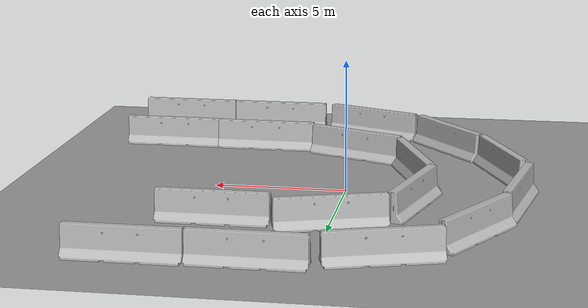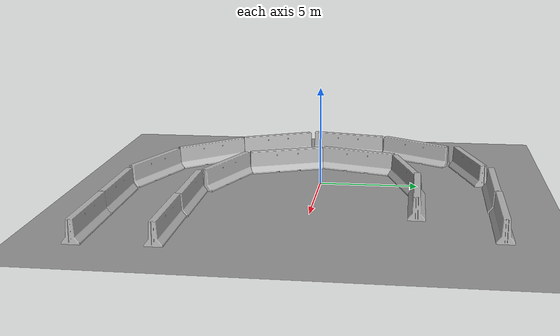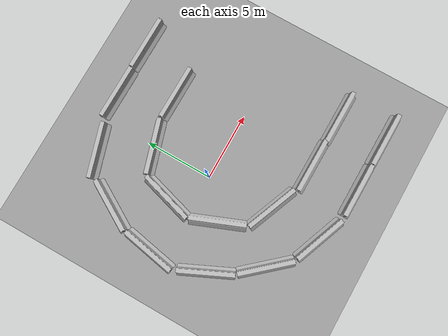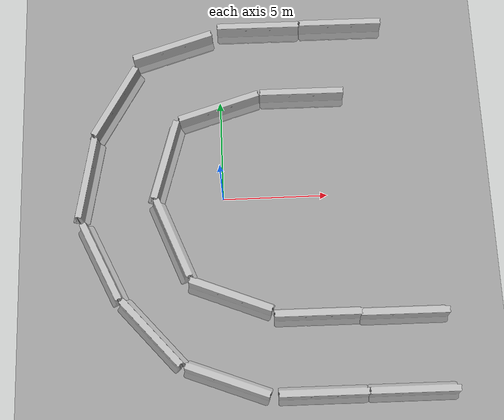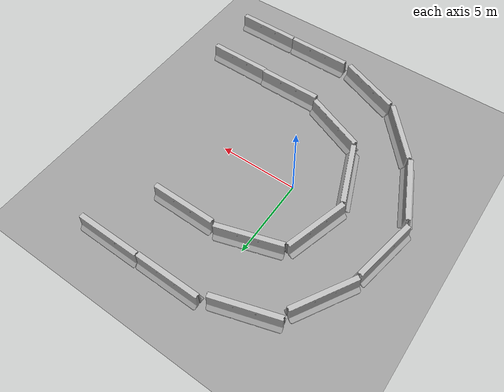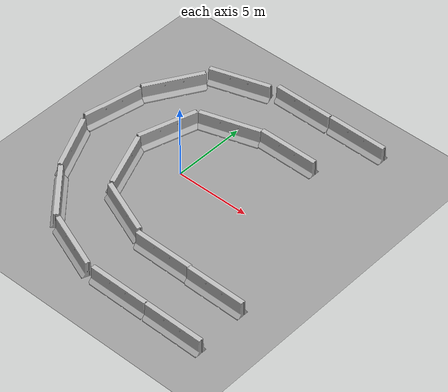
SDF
<sdf version="1.6">
 <world name="default">
  <light name="sun" type="directional">
   <pose>0 0 10 0 -0 0</pose>
   <diffuse>0.8 0.8 0.8 1</diffuse>
   <specular>0.2 0.2 0.2 1</specular>
   <attenuation>
    <range>1000</range>
    <constant>0.9</constant>
    <linear>0.01</linear>
    <quadratic>0.001</quadratic>
   </attenuation>
   <direction>0.5 0.1 -0.9</direction>
  </light>
  <scene><ambient>0.4 0.4 0.4 1</ambient><background>0.7 0.7 0.7 1</background><shadows>1</shadows></scene>
  <physics name="default_physics" default="0" type="ode">
   <max_step_size>0.01</max_step_size>
   <real_time_factor>1</real_time_factor>
   <real_time_update_rate>100</real_time_update_rate>
  </physics>
  <model name="jersey_barrier">
   <static>1</static>
   <link name="link">
    <visual name="visual">
     <geometry>
      <mesh><uri>model://jersey_barrier/meshes/jersey_barrier.dae</uri><scale>1 1 1</scale></mesh>
     </geometry>
    </visual>
    <collision name="upright">
     <pose>0 0 0.5715 0 -0 0</pose>
     <geometry><box><size>4.06542 0.3063 1.143</size></box></geometry>
    </collision>
    <collision name="base">
     <pose>0 0 0.032258 0 -0 0</pose>
     <geometry><box><size>4.06542 0.8107 0.064516</size></box></geometry>
    </collision>
    <collision name="base2">
     <pose>0 0 0.1 0 -0 0</pose>
     <geometry><box><size>4.06542 0.65 0.1</size></box></geometry>
    </collision>
    <collision name="base3">
     <pose>0 0 0.2 0 -0 0</pose>
     <geometry><box><size>4.06542 0.5 0.1</size></box></geometry>
    </collision>
    <collision name="left-angle">
     <pose>0 -0.224 0.2401 0.9 -0 0</pose>
     <geometry><box><size>4.06542 0.5 0.064516</size></box></geometry>
    </collision>
    <collision name="right-angle">
     <pose>0 0.224 0.2401 -0.9 0 0</pose>
     <geometry><box><size>4.06542 0.5 0.064516</size></box></geometry>
    </collision>
    <velocity_decay><linear>0</linear><angular>0</angular></velocity_decay>
   </link>
   <pose>8.2901 -9.52037 0 0 0 -0.006241</pose>
  </model>
  <model name="ground_plane_0">
   <static>1</static>
   <link name="link">
    <collision name="collision">
     <geometry><plane><normal>0 0 1</normal><size>100 100</size></plane></geometry>
     <surface><friction><ode><mu>100</mu><mu2>50</mu2></ode></friction></surface>
    </collision>
    <visual name="visual">
     <cast_shadows>0</cast_shadows>
     <geometry><plane><normal>0 0 1</normal><size>100 100</size></plane></geometry>
     <material>
      <script><uri>file://media/materials/scripts/gazebo.material</uri><name>Gazebo/Grey</name></script>
     </material>
    </visual>
    <velocity_decay><linear>0</linear><angular>0</angular></velocity_decay>
   </link>
   <pose>0.497681 0 0 0 -0 0</pose>
  </model>
  <gravity>0 0 -9.8</gravity>
  <magnetic_field>6e-06 2.3e-05 -4.2e-05</magnetic_field>
  <atmosphere type="adiabatic"/>
  <spherical_coordinates>
   <surface_model>EARTH_WGS84</surface_model>
   <latitude_deg>0</latitude_deg>
   <longitude_deg>0</longitude_deg>
   <elevation>0</elevation>
   <heading_deg>0</heading_deg>
  </spherical_coordinates>
  <model name="jersey_barrier_clone">
   <static>1</static>
   <link name="link">
    <visual name="visual">
     <geometry>
      <mesh><uri>model://jersey_barrier/meshes/jersey_barrier.dae</uri><scale>1 1 1</scale></mesh>
     </geometry>
    </visual>
    <collision name="upright">
     <pose>0 0 0.5715 0 -0 0</pose>
     <geometry><box><size>4.06542 0.3063 1.143</size></box></geometry>
    </collision>
    <collision name="base">
     <pose>0 0 0.032258 0 -0 0</pose>
     <geometry><box><size>4.06542 0.8107 0.064516</size></box></geometry>
    </collision>
    <collision name="base2">
     <pose>0 0 0.1 0 -0 0</pose>
     <geometry><box><size>4.06542 0.65 0.1</size></box></geometry>
    </collision>
    <collision name="base3">
     <pose>0 0 0.2 0 -0 0</pose>
     <geometry><box><size>4.06542 0.5 0.1</size></box></geometry>
    </collision>
    <collision name="left-angle">
     <pose>0 -0.224 0.2401 0.9 -0 0</pose>
     <geometry><box><size>4.06542 0.5 0.064516</size></box></geometry>
    </collision>
    <collision name="right-angle">
     <pose>0 0.224 0.2401 -0.9 0 0</pose>
     <geometry><box><size>4.06542 0.5 0.064516</size></box></geometry>
    </collision>
    <velocity_decay><linear>0</linear><angular>0</angular></velocity_decay>
   </link>
   <pose>8.14351 -5.98005 0 0 0 -0.006241</pose>
  </model>
  <model name="jersey_barrier_clone_0">
   <static>1</static>
   <link name="link">
    <visual name="visual">
     <geometry>
      <mesh><uri>model://jersey_barrier/meshes/jersey_barrier.dae</uri><scale>1 1 1</scale></mesh>
     </geometry>
    </visual>
    <collision name="upright">
     <pose>0 0 0.5715 0 -0 0</pose>
     <geometry><box><size>4.06542 0.3063 1.143</size></box></geometry>
    </collision>
    <collision name="base">
     <pose>0 0 0.032258 0 -0 0</pose>
     <geometry><box><size>4.06542 0.8107 0.064516</size></box></geometry>
    </collision>
    <collision name="base2">
     <pose>0 0 0.1 0 -0 0</pose>
     <geometry><box><size>4.06542 0.65 0.1</size></box></geometry>
    </collision>
    <collision name="base3">
     <pose>0 0 0.2 0 -0 0</pose>
     <geometry><box><size>4.06542 0.5 0.1</size></box></geometry>
    </collision>
    <collision name="left-angle">
     <pose>0 -0.224 0.2401 0.9 -0 0</pose>
     <geometry><box><size>4.06542 0.5 0.064516</size></box></geometry>
    </collision>
    <collision name="right-angle">
     <pose>0 0.224 0.2401 -0.9 0 0</pose>
     <geometry><box><size>4.06542 0.5 0.064516</size></box></geometry>
    </collision>
    <velocity_decay><linear>0</linear><angular>0</angular></velocity_decay>
   </link>
   <pose>4.21523 -9.49538 0 0 0 -0.006241</pose>
  </model>
  <model name="jersey_barrier_clone_1">
   <static>1</static>
   <link name="link">
    <visual name="visual">
     <geometry>
      <mesh><uri>model://jersey_barrier/meshes/jersey_barrier.dae</uri><scale>1 1 1</scale></mesh>
     </geometry>
    </visual>
    <collision name="upright">
     <pose>0 0 0.5715 0 -0 0</pose>
     <geometry><box><size>4.06542 0.3063 1.143</size></box></geometry>
    </collision>
    <collision name="base">
     <pose>0 0 0.032258 0 -0 0</pose>
     <geometry><box><size>4.06542 0.8107 0.064516</size></box></geometry>
    </collision>
    <collision name="base2">
     <pose>0 0 0.1 0 -0 0</pose>
     <geometry><box><size>4.06542 0.65 0.1</size></box></geometry>
    </collision>
    <collision name="base3">
     <pose>0 0 0.2 0 -0 0</pose>
     <geometry><box><size>4.06542 0.5 0.1</size></box></geometry>
    </collision>
    <collision name="left-angle">
     <pose>0 -0.224 0.2401 0.9 -0 0</pose>
     <geometry><box><size>4.06542 0.5 0.064516</size></box></geometry>
    </collision>
    <collision name="right-angle">
     <pose>0 0.224 0.2401 -0.9 0 0</pose>
     <geometry><box><size>4.06542 0.5 0.064516</size></box></geometry>
    </collision>
    <velocity_decay><linear>0</linear><angular>0</angular></velocity_decay>
   </link>
   <pose>4.18497 -5.89548 0 0 0 -0.006241</pose>
  </model>
  <model name="jersey_barrier_clone_2">
   <static>1</static>
   <link name="link">
    <visual name="visual">
     <geometry>
      <mesh><uri>model://jersey_barrier/meshes/jersey_barrier.dae</uri><scale>1 1 1</scale></mesh>
     </geometry>
    </visual>
    <collision name="upright">
     <pose>0 0 0.5715 0 -0 0</pose>
     <geometry><box><size>4.06542 0.3063 1.143</size></box></geometry>
    </collision>
    <collision name="base">
     <pose>0 0 0.032258 0 -0 0</pose>
     <geometry><box><size>4.06542 0.8107 0.064516</size></box></geometry>
    </collision>
    <collision name="base2">
     <pose>0 0 0.1 0 -0 0</pose>
     <geometry><box><size>4.06542 0.65 0.1</size></box></geometry>
    </collision>
    <collision name="base3">
     <pose>0 0 0.2 0 -0 0</pose>
     <geometry><box><size>4.06542 0.5 0.1</size></box></geometry>
    </collision>
    <collision name="left-angle">
     <pose>0 -0.224 0.2401 0.9 -0 0</pose>
     <geometry><box><size>4.06542 0.5 0.064516</size></box></geometry>
    </collision>
    <collision name="right-angle">
     <pose>0 0.224 0.2401 -0.9 0 0</pose>
     <geometry><box><size>4.06542 0.5 0.064516</size></box></geometry>
    </collision>
    <velocity_decay><linear>0</linear><angular>0</angular></velocity_decay>
   </link>
   <pose>-0.060796 -8.76816 0 0 0 -0.368195</pose>
  </model>
  <model name="jersey_barrier_clone_3">
   <static>1</static>
   <link name="link">
    <visual name="visual">
     <geometry>
      <mesh><uri>model://jersey_barrier/meshes/jersey_barrier.dae</uri><scale>1 1 1</scale></mesh>
     </geometry>
    </visual>
    <collision name="upright">
     <pose>0 0 0.5715 0 -0 0</pose>
     <geometry><box><size>4.06542 0.3063 1.143</size></box></geometry>
    </collision>
    <collision name="base">
     <pose>0 0 0.032258 0 -0 0</pose>
     <geometry><box><size>4.06542 0.8107 0.064516</size></box></geometry>
    </collision>
    <collision name="base2">
     <pose>0 0 0.1 0 -0 0</pose>
     <geometry><box><size>4.06542 0.65 0.1</size></box></geometry>
    </collision>
    <collision name="base3">
     <pose>0 0 0.2 0 -0 0</pose>
     <geometry><box><size>4.06542 0.5 0.1</size></box></geometry>
    </collision>
    <collision name="left-angle">
     <pose>0 -0.224 0.2401 0.9 -0 0</pose>
     <geometry><box><size>4.06542 0.5 0.064516</size></box></geometry>
    </collision>
    <collision name="right-angle">
     <pose>0 0.224 0.2401 -0.9 0 0</pose>
     <geometry><box><size>4.06542 0.5 0.064516</size></box></geometry>
    </collision>
    <velocity_decay><linear>0</linear><angular>0</angular></velocity_decay>
   </link>
   <pose>0.21094 -4.88398 0 0 0 -0.381592</pose>
  </model>
  <model name="jersey_barrier_clone_4">
   <static>1</static>
   <link name="link">
    <visual name="visual">
     <geometry>
      <mesh><uri>model://jersey_barrier/meshes/jersey_barrier.dae</uri><scale>1 1 1</scale></mesh>
     </geometry>
    </visual>
    <collision name="upright">
     <pose>0 0 0.5715 0 -0 0</pose>
     <geometry><box><size>4.06542 0.3063 1.143</size></box></geometry>
    </collision>
    <collision name="base">
     <pose>0 0 0.032258 0 -0 0</pose>
     <geometry><box><size>4.06542 0.8107 0.064516</size></box></geometry>
    </collision>
    <collision name="base2">
     <pose>0 0 0.1 0 -0 0</pose>
     <geometry><box><size>4.06542 0.65 0.1</size></box></geometry>
    </collision>
    <collision name="base3">
     <pose>0 0 0.2 0 -0 0</pose>
     <geometry><box><size>4.06542 0.5 0.1</size></box></geometry>
    </collision>
    <collision name="left-angle">
     <pose>0 -0.224 0.2401 0.9 -0 0</pose>
     <geometry><box><size>4.06542 0.5 0.064516</size></box></geometry>
    </collision>
    <collision name="right-angle">
     <pose>0 0.224 0.2401 -0.9 0 0</pose>
     <geometry><box><size>4.06542 0.5 0.064516</size></box></geometry>
    </collision>
    <velocity_decay><linear>0</linear><angular>0</angular></velocity_decay>
   </link>
   <pose>-3.47299 -6.47956 0 0 0 -0.851266</pose>
  </model>
  <model name="jersey_barrier_clone_5">
   <static>1</static>
   <link name="link">
    <visual name="visual">
     <geometry>
      <mesh><uri>model://jersey_barrier/meshes/jersey_barrier.dae</uri><scale>1 1 1</scale></mesh>
     </geometry>
    </visual>
    <collision name="upright">
     <pose>0 0 0.5715 0 -0 0</pose>
     <geometry><box><size>4.06542 0.3063 1.143</size></box></geometry>
    </collision>
    <collision name="base">
     <pose>0 0 0.032258 0 -0 0</pose>
     <geometry><box><size>4.06542 0.8107 0.064516</size></box></geometry>
    </collision>
    <collision name="base2">
     <pose>0 0 0.1 0 -0 0</pose>
     <geometry><box><size>4.06542 0.65 0.1</size></box></geometry>
    </collision>
    <collision name="base3">
     <pose>0 0 0.2 0 -0 0</pose>
     <geometry><box><size>4.06542 0.5 0.1</size></box></geometry>
    </collision>
    <collision name="left-angle">
     <pose>0 -0.224 0.2401 0.9 -0 0</pose>
     <geometry><box><size>4.06542 0.5 0.064516</size></box></geometry>
    </collision>
    <collision name="right-angle">
     <pose>0 0.224 0.2401 -0.9 0 0</pose>
     <geometry><box><size>4.06542 0.5 0.064516</size></box></geometry>
    </collision>
    <velocity_decay><linear>0</linear><angular>0</angular></velocity_decay>
   </link>
   <pose>-2.46501 -2.09514 0 -0.053991 -0.00092 -1.19205</pose>
  </model>
  <model name="jersey_barrier_clone_6">
   <static>1</static>
   <link name="link">
    <visual name="visual">
     <geometry>
      <mesh><uri>model://jersey_barrier/meshes/jersey_barrier.dae</uri><scale>1 1 1</scale></mesh>
     </geometry>
    </visual>
    <collision name="upright">
     <pose>0 0 0.5715 0 -0 0</pose>
     <geometry><box><size>4.06542 0.3063 1.143</size></box></geometry>
    </collision>
    <collision name="base">
     <pose>0 0 0.032258 0 -0 0</pose>
     <geometry><box><size>4.06542 0.8107 0.064516</size></box></geometry>
    </collision>
    <collision name="base2">
     <pose>0 0 0.1 0 -0 0</pose>
     <geometry><box><size>4.06542 0.65 0.1</size></box></geometry>
    </collision>
    <collision name="base3">
     <pose>0 0 0.2 0 -0 0</pose>
     <geometry><box><size>4.06542 0.5 0.1</size></box></geometry>
    </collision>
    <collision name="left-angle">
     <pose>0 -0.224 0.2401 0.9 -0 0</pose>
     <geometry><box><size>4.06542 0.5 0.064516</size></box></geometry>
    </collision>
    <collision name="right-angle">
     <pose>0 0.224 0.2401 -0.9 0 0</pose>
     <geometry><box><size>4.06542 0.5 0.064516</size></box></geometry>
    </collision>
    <velocity_decay><linear>0</linear><angular>0</angular></velocity_decay>
   </link>
   <pose>-5.76661 -3.07786 0 0 0 -1.13822</pose>
  </model>
  <model name="jersey_barrier_clone_7">
   <static>1</static>
   <link name="link">
    <visual name="visual">
     <geometry>
      <mesh><uri>model://jersey_barrier/meshes/jersey_barrier.dae</uri><scale>1 1 1</scale></mesh>
     </geometry>
    </visual>
    <collision name="upright">
     <pose>0 0 0.5715 0 -0 0</pose>
     <geometry><box><size>4.06542 0.3063 1.143</size></box></geometry>
    </collision>
    <collision name="base">
     <pose>0 0 0.032258 0 -0 0</pose>
     <geometry><box><size>4.06542 0.8107 0.064516</size></box></geometry>
    </collision>
    <collision name="base2">
     <pose>0 0 0.1 0 -0 0</pose>
     <geometry><box><size>4.06542 0.65 0.1</size></box></geometry>
    </collision>
    <collision name="base3">
     <pose>0 0 0.2 0 -0 0</pose>
     <geometry><box><size>4.06542 0.5 0.1</size></box></geometry>
    </collision>
    <collision name="left-angle">
     <pose>0 -0.224 0.2401 0.9 -0 0</pose>
     <geometry><box><size>4.06542 0.5 0.064516</size></box></geometry>
    </collision>
    <collision name="right-angle">
     <pose>0 0.224 0.2401 -0.9 0 0</pose>
     <geometry><box><size>4.06542 0.5 0.064516</size></box></geometry>
    </collision>
    <velocity_decay><linear>0</linear><angular>0</angular></velocity_decay>
   </link>
   <pose>-2.68861 1.80469 0 0 0 -1.85354</pose>
  </model>
  <model name="jersey_barrier_clone_8">
   <static>1</static>
   <link name="link">
    <visual name="visual">
     <geometry>
      <mesh><uri>model://jersey_barrier/meshes/jersey_barrier.dae</uri><scale>1 1 1</scale></mesh>
     </geometry>
    </visual>
    <collision name="upright">
     <pose>0 0 0.5715 0 -0 0</pose>
     <geometry><box><size>4.06542 0.3063 1.143</size></box></geometry>
    </collision>
    <collision name="base">
     <pose>0 0 0.032258 0 -0 0</pose>
     <geometry><box><size>4.06542 0.8107 0.064516</size></box></geometry>
    </collision>
    <collision name="base2">
     <pose>0 0 0.1 0 -0 0</pose>
     <geometry><box><size>4.06542 0.65 0.1</size></box></geometry>
    </collision>
    <collision name="base3">
     <pose>0 0 0.2 0 -0 0</pose>
     <geometry><box><size>4.06542 0.5 0.1</size></box></geometry>
    </collision>
    <collision name="left-angle">
     <pose>0 -0.224 0.2401 0.9 -0 0</pose>
     <geometry><box><size>4.06542 0.5 0.064516</size></box></geometry>
    </collision>
    <collision name="right-angle">
     <pose>0 0.224 0.2401 -0.9 0 0</pose>
     <geometry><box><size>4.06542 0.5 0.064516</size></box></geometry>
    </collision>
    <velocity_decay><linear>0</linear><angular>0</angular></velocity_decay>
   </link>
   <pose>-0.070297 4.41659 0 0 -0 0.301235</pose>
  </model>
  <model name="jersey_barrier_clone_9">
   <static>1</static>
   <link name="link">
    <visual name="visual">
     <geometry>
      <mesh><uri>model://jersey_barrier/meshes/jersey_barrier.dae</uri><scale>1 1 1</scale></mesh>
     </geometry>
    </visual>
    <collision name="upright">
     <pose>0 0 0.5715 0 -0 0</pose>
     <geometry><box><size>4.06542 0.3063 1.143</size></box></geometry>
    </collision>
    <collision name="base">
     <pose>0 0 0.032258 0 -0 0</pose>
     <geometry><box><size>4.06542 0.8107 0.064516</size></box></geometry>
    </collision>
    <collision name="base2">
     <pose>0 0 0.1 0 -0 0</pose>
     <geometry><box><size>4.06542 0.65 0.1</size></box></geometry>
    </collision>
    <collision name="base3">
     <pose>0 0 0.2 0 -0 0</pose>
     <geometry><box><size>4.06542 0.5 0.1</size></box></geometry>
    </collision>
    <collision name="left-angle">
     <pose>0 -0.224 0.2401 0.9 -0 0</pose>
     <geometry><box><size>4.06542 0.5 0.064516</size></box></geometry>
    </collision>
    <collision name="right-angle">
     <pose>0 0.224 0.2401 -0.9 0 0</pose>
     <geometry><box><size>4.06542 0.5 0.064516</size></box></geometry>
    </collision>
    <velocity_decay><linear>0</linear><angular>0</angular></velocity_decay>
   </link>
   <pose>-6.43837 1.03581 0 0 0 -1.75706</pose>
  </model>
  <model name="jersey_barrier_clone_10">
   <static>1</static>
   <link name="link">
    <visual name="visual">
     <geometry>
      <mesh><uri>model://jersey_barrier/meshes/jersey_barrier.dae</uri><scale>1 1 1</scale></mesh>
     </geometry>
    </visual>
    <collision name="upright">
     <pose>0 0 0.5715 0 -0 0</pose>
     <geometry><box><size>4.06542 0.3063 1.143</size></box></geometry>
    </collision>
    <collision name="base">
     <pose>0 0 0.032258 0 -0 0</pose>
     <geometry><box><size>4.06542 0.8107 0.064516</size></box></geometry>
    </collision>
    <collision name="base2">
     <pose>0 0 0.1 0 -0 0</pose>
     <geometry><box><size>4.06542 0.65 0.1</size></box></geometry>
    </collision>
    <collision name="base3">
     <pose>0 0 0.2 0 -0 0</pose>
     <geometry><box><size>4.06542 0.5 0.1</size></box></geometry>
    </collision>
    <collision name="left-angle">
     <pose>0 -0.224 0.2401 0.9 -0 0</pose>
     <geometry><box><size>4.06542 0.5 0.064516</size></box></geometry>
    </collision>
    <collision name="right-angle">
     <pose>0 0.224 0.2401 -0.9 0 0</pose>
     <geometry><box><size>4.06542 0.5 0.064516</size></box></geometry>
    </collision>
    <velocity_decay><linear>0</linear><angular>0</angular></velocity_decay>
   </link>
   <pose>-5.09287 4.9154 0 0 0 -2.10288</pose>
  </model>
  <model name="jersey_barrier_clone_11">
   <static>1</static>
   <link name="link">
    <visual name="visual">
     <geometry>
      <mesh><uri>model://jersey_barrier/meshes/jersey_barrier.dae</uri><scale>1 1 1</scale></mesh>
     </geometry>
    </visual>
    <collision name="upright">
     <pose>0 0 0.5715 0 -0 0</pose>
     <geometry><box><size>4.06542 0.3063 1.143</size></box></geometry>
    </collision>
    <collision name="base">
     <pose>0 0 0.032258 0 -0 0</pose>
     <geometry><box><size>4.06542 0.8107 0.064516</size></box></geometry>
    </collision>
    <collision name="base2">
     <pose>0 0 0.1 0 -0 0</pose>
     <geometry><box><size>4.06542 0.65 0.1</size></box></geometry>
    </collision>
    <collision name="base3">
     <pose>0 0 0.2 0 -0 0</pose>
     <geometry><box><size>4.06542 0.5 0.1</size></box></geometry>
    </collision>
    <collision name="left-angle">
     <pose>0 -0.224 0.2401 0.9 -0 0</pose>
     <geometry><box><size>4.06542 0.5 0.064516</size></box></geometry>
    </collision>
    <collision name="right-angle">
     <pose>0 0.224 0.2401 -0.9 0 0</pose>
     <geometry><box><size>4.06542 0.5 0.064516</size></box></geometry>
    </collision>
    <velocity_decay><linear>0</linear><angular>0</angular></velocity_decay>
   </link>
   <pose>6.09884 8.68674 0 0 0 -0.006241</pose>
  </model>
  <model name="jersey_barrier_clone_12">
   <static>1</static>
   <link name="link">
    <visual name="visual">
     <geometry>
      <mesh><uri>model://jersey_barrier/meshes/jersey_barrier.dae</uri><scale>1 1 1</scale></mesh>
     </geometry>
    </visual>
    <collision name="upright">
     <pose>0 0 0.5715 0 -0 0</pose>
     <geometry><box><size>4.06542 0.3063 1.143</size></box></geometry>
    </collision>
    <collision name="base">
     <pose>0 0 0.032258 0 -0 0</pose>
     <geometry><box><size>4.06542 0.8107 0.064516</size></box></geometry>
    </collision>
    <collision name="base2">
     <pose>0 0 0.1 0 -0 0</pose>
     <geometry><box><size>4.06542 0.65 0.1</size></box></geometry>
    </collision>
    <collision name="base3">
     <pose>0 0 0.2 0 -0 0</pose>
     <geometry><box><size>4.06542 0.5 0.1</size></box></geometry>
    </collision>
    <collision name="left-angle">
     <pose>0 -0.224 0.2401 0.9 -0 0</pose>
     <geometry><box><size>4.06542 0.5 0.064516</size></box></geometry>
    </collision>
    <collision name="right-angle">
     <pose>0 0.224 0.2401 -0.9 0 0</pose>
     <geometry><box><size>4.06542 0.5 0.064516</size></box></geometry>
    </collision>
    <velocity_decay><linear>0</linear><angular>0</angular></velocity_decay>
   </link>
   <pose>2.00736 8.66896 0 0 0 -0.006241</pose>
  </model>
  <model name="jersey_barrier_clone_13">
   <static>1</static>
   <link name="link">
    <visual name="visual">
     <geometry>
      <mesh><uri>model://jersey_barrier/meshes/jersey_barrier.dae</uri><scale>1 1 1</scale></mesh>
     </geometry>
    </visual>
    <collision name="upright">
     <pose>0 0 0.5715 0 -0 0</pose>
     <geometry><box><size>4.06542 0.3063 1.143</size></box></geometry>
    </collision>
    <collision name="base">
     <pose>0 0 0.032258 0 -0 0</pose>
     <geometry><box><size>4.06542 0.8107 0.064516</size></box></geometry>
    </collision>
    <collision name="base2">
     <pose>0 0 0.1 0 -0 0</pose>
     <geometry><box><size>4.06542 0.65 0.1</size></box></geometry>
    </collision>
    <collision name="base3">
     <pose>0 0 0.2 0 -0 0</pose>
     <geometry><box><size>4.06542 0.5 0.1</size></box></geometry>
    </collision>
    <collision name="left-angle">
     <pose>0 -0.224 0.2401 0.9 -0 0</pose>
     <geometry><box><size>4.06542 0.5 0.064516</size></box></geometry>
    </collision>
    <collision name="right-angle">
     <pose>0 0.224 0.2401 -0.9 0 0</pose>
     <geometry><box><size>4.06542 0.5 0.064516</size></box></geometry>
    </collision>
    <velocity_decay><linear>0</linear><angular>0</angular></velocity_decay>
   </link>
   <pose>3.97778 4.95377 0.165927 0 0 -0.006241</pose>
  </model>
  <model name="jersey_barrier_clone_8_clone">
   <static>1</static>
   <link name="link">
    <visual name="visual">
     <geometry>
      <mesh><uri>model://jersey_barrier/meshes/jersey_barrier.dae</uri><scale>1 1 1</scale></mesh>
     </geometry>
    </visual>
    <collision name="upright">
     <pose>0 0 0.5715 0 -0 0</pose>
     <geometry><box><size>4.06542 0.3063 1.143</size></box></geometry>
    </collision>
    <collision name="base">
     <pose>0 0 0.032258 0 -0 0</pose>
     <geometry><box><size>4.06542 0.8107 0.064516</size></box></geometry>
    </collision>
    <collision name="base2">
     <pose>0 0 0.1 0 -0 0</pose>
     <geometry><box><size>4.06542 0.65 0.1</size></box></geometry>
    </collision>
    <collision name="base3">
     <pose>0 0 0.2 0 -0 0</pose>
     <geometry><box><size>4.06542 0.5 0.1</size></box></geometry>
    </collision>
    <collision name="left-angle">
     <pose>0 -0.224 0.2401 0.9 -0 0</pose>
     <geometry><box><size>4.06542 0.5 0.064516</size></box></geometry>
    </collision>
    <collision name="right-angle">
     <pose>0 0.224 0.2401 -0.9 0 0</pose>
     <geometry><box><size>4.06542 0.5 0.064516</size></box></geometry>
    </collision>
    <velocity_decay><linear>0</linear><angular>0</angular></velocity_decay>
   </link>
   <pose>-2.2536 7.74302 0 0 -0 0.301235</pose>
  </model>
 </world>
</sdf>
